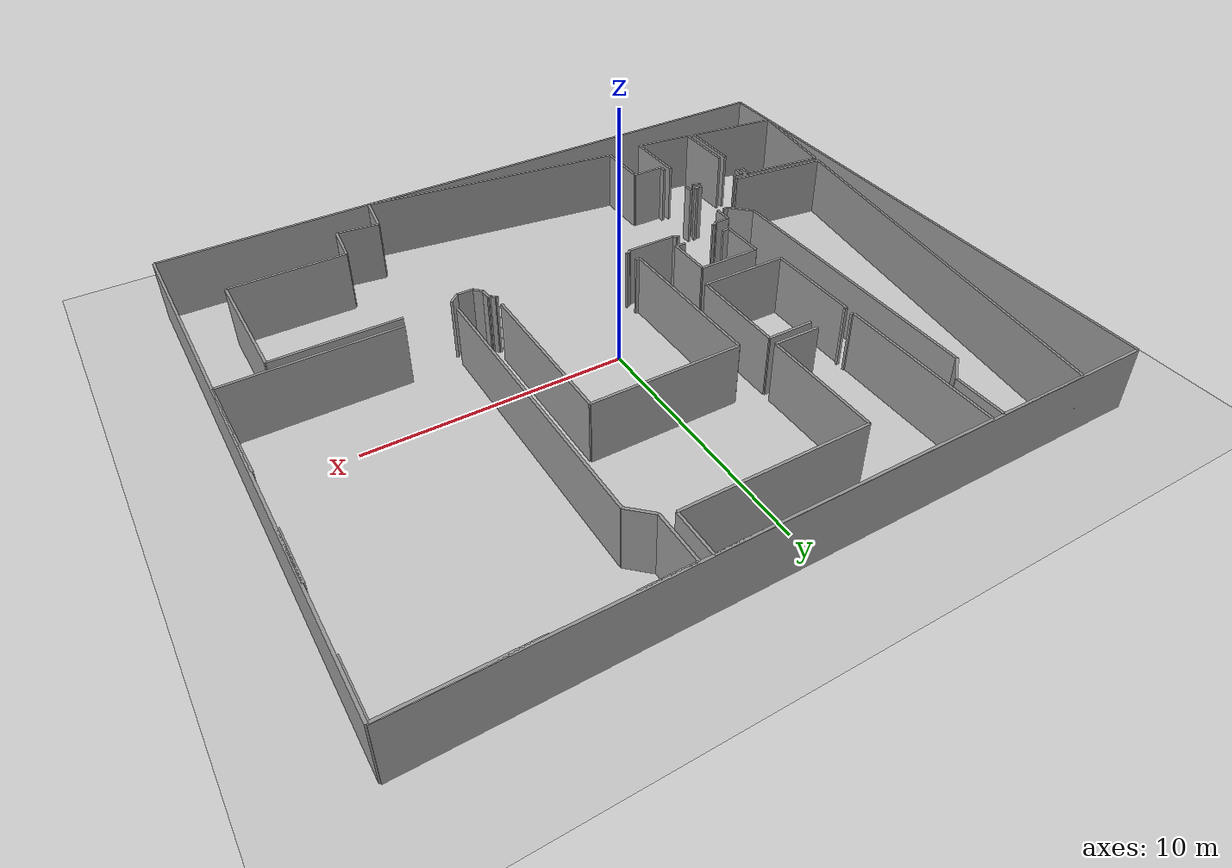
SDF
<sdf version="1.6">
 <world name="default">
  <model name="ground_plane">
   <static>1</static>
   <link name="link">
    <collision name="collision">
     <geometry><plane><normal>0 0 1</normal><size>100 100</size></plane></geometry>
     <surface><friction><ode><mu>100</mu><mu2>50</mu2></ode></friction></surface>
    </collision>
    <visual name="visual">
     <cast_shadows>0</cast_shadows>
     <geometry><plane><normal>0 0 1</normal><size>100 100</size></plane></geometry>
     <material>
      <script><uri>file://media/materials/scripts/gazebo.material</uri><name>Gazebo/Grey</name></script>
     </material>
    </visual>
   </link>
  </model>
  <model name="0510030937_A_40_1_106">
   <static>1</static>
   <link name="Wall_0">
    <collision name="Wall_0_Collision">
     <geometry><box><size>16.0548044985 0.1 2.5</size></box></geometry>
     <pose>8.02740224924 0 1.25 0 0 0</pose>
    </collision>
    <visual name="Wall_0_Visual">
     <pose>8.02740224924 0 1.25 0 0 0</pose>
     <geometry><box><size>16.0548044985 0.1 2.5</size></box></geometry>
     <material>
      <script><uri>file://media/materials/scripts/gazebo.material</uri><name>Gazebo/Grey</name></script>
      <ambient>1 1 1 1</ambient>
     </material>
    </visual>
    <pose>0.576091443086 -15.915288141 0 0 0 1.43886739205</pose>
   </link>
   <link name="Wall_1">
    <collision name="Wall_1_Collision">
     <geometry><box><size>3.60121947628 0.1 2.5</size></box></geometry>
     <pose>1.80060973814 0 1.25 0 0 0</pose>
    </collision>
    <visual name="Wall_1_Visual">
     <pose>1.80060973814 0 1.25 0 0 0</pose>
     <geometry><box><size>3.60121947628 0.1 2.5</size></box></geometry>
     <material>
      <script><uri>file://media/materials/scripts/gazebo.material</uri><name>Gazebo/Grey</name></script>
      <ambient>1 1 1 1</ambient>
     </material>
    </visual>
    <pose>2.68804572154 -0.0 0 0 0 -0.00268029687905</pose>
   </link>
   <link name="Wall_2">
    <collision name="Wall_2_Collision">
     <geometry><box><size>2.01679345738 0.1 2.5</size></box></geometry>
     <pose>1.00839672869 0 1.25 0 0 0</pose>
    </collision>
    <visual name="Wall_2_Visual">
     <pose>1.00839672869 0 1.25 0 0 0</pose>
     <geometry><box><size>2.01679345738 0.1 2.5</size></box></geometry>
     <material>
      <script><uri>file://media/materials/scripts/gazebo.material</uri><name>Gazebo/Grey</name></script>
      <ambient>1 1 1 1</ambient>
     </material>
    </visual>
    <pose>6.28925226226 -0.009652325766 0 0 0 -1.56122422795</pose>
   </link>
   <link name="Wall_3">
    <collision name="Wall_3_Collision">
     <geometry><box><size>1.08655380298 0.1 2.5</size></box></geometry>
     <pose>0.543276901489 0 1.25 0 0 0</pose>
    </collision>
    <visual name="Wall_3_Visual">
     <pose>0.543276901489 0 1.25 0 0 0</pose>
     <geometry><box><size>1.08655380298 0.1 2.5</size></box></geometry>
     <material>
      <script><uri>file://media/materials/scripts/gazebo.material</uri><name>Gazebo/Grey</name></script>
      <ambient>1 1 1 1</ambient>
     </material>
    </visual>
    <pose>6.3085569138 -2.02635338943 0 0 0 -2.36875788933</pose>
   </link>
   <link name="Wall_4">
    <collision name="Wall_4_Collision">
     <geometry><box><size>11.1441196453 0.1 2.5</size></box></geometry>
     <pose>5.57205982267 0 1.25 0 0 0</pose>
    </collision>
    <visual name="Wall_4_Visual">
     <pose>5.57205982267 0 1.25 0 0 0</pose>
     <geometry><box><size>11.1441196453 0.1 2.5</size></box></geometry>
     <material>
      <script><uri>file://media/materials/scripts/gazebo.material</uri><name>Gazebo/Grey</name></script>
      <ambient>1 1 1 1</ambient>
     </material>
    </visual>
    <pose>5.53065565963 -2.78494999206 0 0 0 -1.57027208642</pose>
   </link>
   <link name="Wall_5">
    <collision name="Wall_5_Collision">
     <geometry><box><size>1.06870298314 0.1 2.5</size></box></geometry>
     <pose>0.53435149157 0 1.25 0 0 0</pose>
    </collision>
    <visual name="Wall_5_Visual">
     <pose>0.53435149157 0 1.25 0 0 0</pose>
     <geometry><box><size>1.06870298314 0.1 2.5</size></box></geometry>
     <material>
      <script><uri>file://media/materials/scripts/gazebo.material</uri><name>Gazebo/Grey</name></script>
      <ambient>1 1 1 1</ambient>
     </material>
    </visual>
    <pose>5.5364978568 -13.929068106 0 0 0 -0.779852001777</pose>
   </link>
   <link name="Wall_6">
    <collision name="Wall_6_Collision">
     <geometry><box><size>0.200412763931 0.1 2.5</size></box></geometry>
     <pose>0.100206381965 0 1.25 0 0 0</pose>
    </collision>
    <visual name="Wall_6_Visual">
     <pose>0.100206381965 0 1.25 0 0 0</pose>
     <geometry><box><size>0.200412763931 0.1 2.5</size></box></geometry>
     <material>
      <script><uri>file://media/materials/scripts/gazebo.material</uri><name>Gazebo/Grey</name></script>
      <ambient>1 1 1 1</ambient>
     </material>
    </visual>
    <pose>6.2963645023 -14.6805524686 0 0 0 0.0</pose>
   </link>
   <link name="Wall_7">
    <collision name="Wall_7_Collision">
     <geometry><box><size>0.133608509287 0.1 2.5</size></box></geometry>
     <pose>0.0668042546436 0 1.25 0 0 0</pose>
    </collision>
    <visual name="Wall_7_Visual">
     <pose>0.0668042546436 0 1.25 0 0 0</pose>
     <geometry><box><size>0.133608509287 0.1 2.5</size></box></geometry>
     <material>
      <script><uri>file://media/materials/scripts/gazebo.material</uri><name>Gazebo/Grey</name></script>
      <ambient>1 1 1 1</ambient>
     </material>
    </visual>
    <pose>6.49677726623 -16.5428163201 0 0 0 -1.57079632679</pose>
   </link>
   <link name="Wall_8">
    <collision name="Wall_8_Collision">
     <geometry><box><size>0.278623264386 0.1 2.5</size></box></geometry>
     <pose>0.139311632193 0 1.25 0 0 0</pose>
    </collision>
    <visual name="Wall_8_Visual">
     <pose>0.139311632193 0 1.25 0 0 0</pose>
     <geometry><box><size>0.278623264386 0.1 2.5</size></box></geometry>
     <material>
      <script><uri>file://media/materials/scripts/gazebo.material</uri><name>Gazebo/Grey</name></script>
      <ambient>1 1 1 1</ambient>
     </material>
    </visual>
    <pose>6.49677726623 -16.6764248293 0 0 0 2.99105734041</pose>
   </link>
   <link name="Wall_9">
    <collision name="Wall_9_Collision">
     <geometry><box><size>4.02360225789 0.1 2.5</size></box></geometry>
     <pose>2.01180112894 0 1.25 0 0 0</pose>
    </collision>
    <visual name="Wall_9_Visual">
     <pose>2.01180112894 0 1.25 0 0 0</pose>
     <geometry><box><size>4.02360225789 0.1 2.5</size></box></geometry>
     <material>
      <script><uri>file://media/materials/scripts/gazebo.material</uri><name>Gazebo/Grey</name></script>
      <ambient>1 1 1 1</ambient>
     </material>
    </visual>
    <pose>4.56821717733 -16.4175900937 0 0 0 3.01642722617</pose>
   </link>
   <link name="Wall_10">
    <collision name="Wall_10_Collision">
     <geometry><box><size>2.40224087489 0.1 2.5</size></box></geometry>
     <pose>1.20112043744 0 1.25 0 0 0</pose>
    </collision>
    <visual name="Wall_10_Visual">
     <pose>1.20112043744 0 1.25 0 0 0</pose>
     <geometry><box><size>2.40224087489 0.1 2.5</size></box></geometry>
     <material>
      <script><uri>file://media/materials/scripts/gazebo.material</uri><name>Gazebo/Grey</name></script>
      <ambient>1 1 1 1</ambient>
     </material>
    </visual>
    <pose>6.48839498333 -21.0942689316 0 0 0 3.00716500988</pose>
   </link>
   <link name="Wall_11">
    <collision name="Wall_11_Collision">
     <geometry><box><size>2.4815448769 0.1 2.5</size></box></geometry>
     <pose>1.24077243845 0 1.25 0 0 0</pose>
    </collision>
    <visual name="Wall_11_Visual">
     <pose>1.24077243845 0 1.25 0 0 0</pose>
     <geometry><box><size>2.4815448769 0.1 2.5</size></box></geometry>
     <material>
      <script><uri>file://media/materials/scripts/gazebo.material</uri><name>Gazebo/Grey</name></script>
      <ambient>1 1 1 1</ambient>
     </material>
    </visual>
    <pose>4.10782663915 -20.7723130656 0 0 0 1.56823734779</pose>
   </link>
   <link name="Wall_12">
    <collision name="Wall_12_Collision">
     <geometry><box><size>0.429809601556 0.1 2.5</size></box></geometry>
     <pose>0.214904800778 0 1.25 0 0 0</pose>
    </collision>
    <visual name="Wall_12_Visual">
     <pose>0.214904800778 0 1.25 0 0 0</pose>
     <geometry><box><size>0.429809601556 0.1 2.5</size></box></geometry>
     <material>
      <script><uri>file://media/materials/scripts/gazebo.material</uri><name>Gazebo/Grey</name></script>
      <ambient>1 1 1 1</ambient>
     </material>
    </visual>
    <pose>4.10236545483 -17.0861406572 0 0 0 1.55956748433</pose>
   </link>
   <link name="Wall_13">
    <collision name="Wall_13_Collision">
     <geometry><box><size>0.393914190122 0.1 2.5</size></box></geometry>
     <pose>0.196957095061 0 1.25 0 0 0</pose>
    </collision>
    <visual name="Wall_13_Visual">
     <pose>0.196957095061 0 1.25 0 0 0</pose>
     <geometry><box><size>0.393914190122 0.1 2.5</size></box></geometry>
     <material>
      <script><uri>file://media/materials/scripts/gazebo.material</uri><name>Gazebo/Grey</name></script>
      <ambient>1 1 1 1</ambient>
     </material>
    </visual>
    <pose>4.10719161772 -16.6563581521 0 0 0 -0.10951786398</pose>
   </link>
   <link name="Wall_14">
    <collision name="Wall_14_Collision">
     <geometry><box><size>0.358108511703 0.1 2.5</size></box></geometry>
     <pose>0.179054255851 0 1.25 0 0 0</pose>
    </collision>
    <visual name="Wall_14_Visual">
     <pose>0.179054255851 0 1.25 0 0 0</pose>
     <geometry><box><size>0.358108511703 0.1 2.5</size></box></geometry>
     <material>
      <script><uri>file://media/materials/scripts/gazebo.material</uri><name>Gazebo/Grey</name></script>
      <ambient>1 1 1 1</ambient>
     </material>
    </visual>
    <pose>6.12211462137 -16.8952532148 0 0 0 -0.159201572436</pose>
   </link>
   <link name="Wall_15">
    <collision name="Wall_15_Collision">
     <geometry><box><size>2.51065285695 0.1 2.5</size></box></geometry>
     <pose>1.25532642848 0 1.25 0 0 0</pose>
    </collision>
    <visual name="Wall_15_Visual">
     <pose>1.25532642848 0 1.25 0 0 0</pose>
     <geometry><box><size>2.51065285695 0.1 2.5</size></box></geometry>
     <material>
      <script><uri>file://media/materials/scripts/gazebo.material</uri><name>Gazebo/Grey</name></script>
      <ambient>1 1 1 1</ambient>
     </material>
    </visual>
    <pose>6.47569455469 -18.5836481981 0 0 0 -1.56573768925</pose>
   </link>
   <link name="Wall_16">
    <collision name="Wall_16_Collision">
     <geometry><box><size>3.84897449724 0.1 2.5</size></box></geometry>
     <pose>1.92448724862 0 1.25 0 0 0</pose>
    </collision>
    <visual name="Wall_16_Visual">
     <pose>1.92448724862 0 1.25 0 0 0</pose>
     <geometry><box><size>3.84897449724 0.1 2.5</size></box></geometry>
     <material>
      <script><uri>file://media/materials/scripts/gazebo.material</uri><name>Gazebo/Grey</name></script>
      <ambient>1 1 1 1</ambient>
     </material>
    </visual>
    <pose>3.81622479759 -20.7098269567 0 0 0 3.01104936089</pose>
   </link>
   <link name="Wall_17">
    <collision name="Wall_17_Collision">
     <geometry><box><size>4.09456205937 0.1 2.5</size></box></geometry>
     <pose>2.04728102968 0 1.25 0 0 0</pose>
    </collision>
    <visual name="Wall_17_Visual">
     <pose>2.04728102968 0 1.25 0 0 0</pose>
     <geometry><box><size>4.09456205937 0.1 2.5</size></box></geometry>
     <material>
      <script><uri>file://media/materials/scripts/gazebo.material</uri><name>Gazebo/Grey</name></script>
      <ambient>1 1 1 1</ambient>
     </material>
    </visual>
    <pose>0.0 -20.2087950468 0 0 0 1.43783485177</pose>
   </link>
   <link name="Wall_18">
    <collision name="Wall_18_Collision">
     <geometry><box><size>3.33519864969 0.1 2.5</size></box></geometry>
     <pose>1.66759932485 0 1.25 0 0 0</pose>
    </collision>
    <visual name="Wall_18_Visual">
     <pose>1.66759932485 0 1.25 0 0 0</pose>
     <geometry><box><size>3.33519864969 0.1 2.5</size></box></geometry>
     <material>
      <script><uri>file://media/materials/scripts/gazebo.material</uri><name>Gazebo/Grey</name></script>
      <ambient>1 1 1 1</ambient>
     </material>
    </visual>
    <pose>0.542816320051 -16.1503730751 0 0 0 -0.1305660948</pose>
   </link>
   <link name="Wall_19">
    <collision name="Wall_19_Collision">
     <geometry><box><size>0.484339883918 0.1 2.5</size></box></geometry>
     <pose>0.242169941959 0 1.25 0 0 0</pose>
    </collision>
    <visual name="Wall_19_Visual">
     <pose>0.242169941959 0 1.25 0 0 0</pose>
     <geometry><box><size>0.484339883918 0.1 2.5</size></box></geometry>
     <material>
      <script><uri>file://media/materials/scripts/gazebo.material</uri><name>Gazebo/Grey</name></script>
      <ambient>1 1 1 1</ambient>
     </material>
    </visual>
    <pose>3.84962692491 -16.5846007303 0 0 0 -1.58810380379</pose>
   </link>
   <link name="Wall_20">
    <collision name="Wall_20_Collision">
     <geometry><box><size>2.43576775469 0.1 2.5</size></box></geometry>
     <pose>1.21788387735 0 1.25 0 0 0</pose>
    </collision>
    <visual name="Wall_20_Visual">
     <pose>1.21788387735 0 1.25 0 0 0</pose>
     <geometry><box><size>2.43576775469 0.1 2.5</size></box></geometry>
     <material>
      <script><uri>file://media/materials/scripts/gazebo.material</uri><name>Gazebo/Grey</name></script>
      <ambient>1 1 1 1</ambient>
     </material>
    </visual>
    <pose>3.83591046198 -18.2741387522 0 0 0 -1.57887832832</pose>
   </link>
   <link name="Wall_21">
    <collision name="Wall_21_Collision">
     <geometry><box><size>2.09353865693 0.1 2.5</size></box></geometry>
     <pose>1.04676932846 0 1.25 0 0 0</pose>
    </collision>
    <visual name="Wall_21_Visual">
     <pose>1.04676932846 0 1.25 0 0 0</pose>
     <geometry><box><size>2.09353865693 0.1 2.5</size></box></geometry>
     <material>
      <script><uri>file://media/materials/scripts/gazebo.material</uri><name>Gazebo/Grey</name></script>
      <ambient>1 1 1 1</ambient>
     </material>
    </visual>
    <pose>8.06591522464 -21.0025718368 0 0 0 1.57079632679</pose>
   </link>
   <link name="Wall_22">
    <collision name="Wall_22_Collision">
     <geometry><box><size>1.29645975552 0.1 2.5</size></box></geometry>
     <pose>0.648229877758 0 1.25 0 0 0</pose>
    </collision>
    <visual name="Wall_22_Visual">
     <pose>0.648229877758 0 1.25 0 0 0</pose>
     <geometry><box><size>1.29645975552 0.1 2.5</size></box></geometry>
     <material>
      <script><uri>file://media/materials/scripts/gazebo.material</uri><name>Gazebo/Grey</name></script>
      <ambient>1 1 1 1</ambient>
     </material>
    </visual>
    <pose>8.06591522464 -18.9090331799 0 0 0 3.14159265359</pose>
   </link>
   <link name="Wall_23">
    <collision name="Wall_23_Collision">
     <geometry><box><size>0.288172725829 0.1 2.5</size></box></geometry>
     <pose>0.144086362915 0 1.25 0 0 0</pose>
    </collision>
    <visual name="Wall_23_Visual">
     <pose>0.144086362915 0 1.25 0 0 0</pose>
     <geometry><box><size>0.288172725829 0.1 2.5</size></box></geometry>
     <material>
      <script><uri>file://media/materials/scripts/gazebo.material</uri><name>Gazebo/Grey</name></script>
      <ambient>1 1 1 1</ambient>
     </material>
    </visual>
    <pose>6.76945546912 -18.9090331799 0 0 0 1.57079632679</pose>
   </link>
   <link name="Wall_24">
    <collision name="Wall_24_Collision">
     <geometry><box><size>0.385204000635 0.1 2.5</size></box></geometry>
     <pose>0.192602000318 0 1.25 0 0 0</pose>
    </collision>
    <visual name="Wall_24_Visual">
     <pose>0.192602000318 0 1.25 0 0 0</pose>
     <geometry><box><size>0.385204000635 0.1 2.5</size></box></geometry>
     <material>
      <script><uri>file://media/materials/scripts/gazebo.material</uri><name>Gazebo/Grey</name></script>
      <ambient>1 1 1 1</ambient>
     </material>
    </visual>
    <pose>6.76945546912 -16.9710747738 0 0 0 1.57079632679</pose>
   </link>
   <link name="Wall_25">
    <collision name="Wall_25_Collision">
     <geometry><box><size>0.719860295285 0.1 2.5</size></box></geometry>
     <pose>0.359930147642 0 1.25 0 0 0</pose>
    </collision>
    <visual name="Wall_25_Visual">
     <pose>0.359930147642 0 1.25 0 0 0</pose>
     <geometry><box><size>0.719860295285 0.1 2.5</size></box></geometry>
     <material>
      <script><uri>file://media/materials/scripts/gazebo.material</uri><name>Gazebo/Grey</name></script>
      <ambient>1 1 1 1</ambient>
     </material>
    </visual>
    <pose>6.76945546912 -14.7105254802 0 0 0 1.57079632679</pose>
   </link>
   <link name="Wall_26">
    <collision name="Wall_26_Collision">
     <geometry><box><size>0.590315923162 0.1 2.5</size></box></geometry>
     <pose>0.295157961581 0 1.25 0 0 0</pose>
    </collision>
    <visual name="Wall_26_Visual">
     <pose>0.295157961581 0 1.25 0 0 0</pose>
     <geometry><box><size>0.590315923162 0.1 2.5</size></box></geometry>
     <material>
      <script><uri>file://media/materials/scripts/gazebo.material</uri><name>Gazebo/Grey</name></script>
      <ambient>1 1 1 1</ambient>
     </material>
    </visual>
    <pose>6.76945546912 -13.9906651849 0 0 0 0.0</pose>
   </link>
   <link name="Wall_27">
    <collision name="Wall_27_Collision">
     <geometry><box><size>0.197297551502 0.1 2.5</size></box></geometry>
     <pose>0.0986487757508 0 1.25 0 0 0</pose>
    </collision>
    <visual name="Wall_27_Visual">
     <pose>0.0986487757508 0 1.25 0 0 0</pose>
     <geometry><box><size>0.197297551502 0.1 2.5</size></box></geometry>
     <material>
      <script><uri>file://media/materials/scripts/gazebo.material</uri><name>Gazebo/Grey</name></script>
      <ambient>1 1 1 1</ambient>
     </material>
    </visual>
    <pose>7.35977139228 -13.9906651849 0 0 0 0.695150375407</pose>
   </link>
   <link name="Wall_28">
    <collision name="Wall_28_Collision">
     <geometry><box><size>0.0949577679799 0.1 2.5</size></box></geometry>
     <pose>0.04747888399 0 1.25 0 0 0</pose>
    </collision>
    <visual name="Wall_28_Visual">
     <pose>0.04747888399 0 1.25 0 0 0</pose>
     <geometry><box><size>0.0949577679799 0.1 2.5</size></box></geometry>
     <material>
      <script><uri>file://media/materials/scripts/gazebo.material</uri><name>Gazebo/Grey</name></script>
      <ambient>1 1 1 1</ambient>
     </material>
    </visual>
    <pose>7.51128750595 -13.86429592 0 0 0 -0.0669240356469</pose>
   </link>
   <link name="Wall_29">
    <collision name="Wall_29_Collision">
     <geometry><box><size>0.115319892046 0.1 2.5</size></box></geometry>
     <pose>0.0576599460232 0 1.25 0 0 0</pose>
    </collision>
    <visual name="Wall_29_Visual">
     <pose>0.0576599460232 0 1.25 0 0 0</pose>
     <geometry><box><size>0.115319892046 0.1 2.5</size></box></geometry>
     <material>
      <script><uri>file://media/materials/scripts/gazebo.material</uri><name>Gazebo/Grey</name></script>
      <ambient>1 1 1 1</ambient>
     </material>
    </visual>
    <pose>9.172503572 -13.8706461343 0 0 0 0.0</pose>
   </link>
   <link name="Wall_30">
    <collision name="Wall_30_Collision">
     <geometry><box><size>0.168314464014 0.1 2.5</size></box></geometry>
     <pose>0.0841572320072 0 1.25 0 0 0</pose>
    </collision>
    <visual name="Wall_30_Visual">
     <pose>0.0841572320072 0 1.25 0 0 0</pose>
     <geometry><box><size>0.168314464014 0.1 2.5</size></box></geometry>
     <material>
      <script><uri>file://media/materials/scripts/gazebo.material</uri><name>Gazebo/Grey</name></script>
      <ambient>1 1 1 1</ambient>
     </material>
    </visual>
    <pose>9.28782346404 -13.8706461343 0 0 0 -0.770457973065</pose>
   </link>
   <link name="Wall_31">
    <collision name="Wall_31_Collision">
     <geometry><box><size>1.96551833624 0.1 2.5</size></box></geometry>
     <pose>0.982759168122 0 1.25 0 0 0</pose>
    </collision>
    <visual name="Wall_31_Visual">
     <pose>0.982759168122 0 1.25 0 0 0</pose>
     <geometry><box><size>1.96551833624 0.1 2.5</size></box></geometry>
     <material>
      <script><uri>file://media/materials/scripts/gazebo.material</uri><name>Gazebo/Grey</name></script>
      <ambient>1 1 1 1</ambient>
     </material>
    </visual>
    <pose>9.4086045404 -13.9878710906 0 0 0 0.0</pose>
   </link>
   <link name="Wall_32">
    <collision name="Wall_32_Collision">
     <geometry><box><size>0.189507291566 0.1 2.5</size></box></geometry>
     <pose>0.0947536457828 0 1.25 0 0 0</pose>
    </collision>
    <visual name="Wall_32_Visual">
     <pose>0.0947536457828 0 1.25 0 0 0</pose>
     <geometry><box><size>0.189507291566 0.1 2.5</size></box></geometry>
     <material>
      <script><uri>file://media/materials/scripts/gazebo.material</uri><name>Gazebo/Grey</name></script>
      <ambient>1 1 1 1</ambient>
     </material>
    </visual>
    <pose>11.3741228766 -13.9878710906 0 0 0 0.751745628718</pose>
   </link>
   <link name="Wall_33">
    <collision name="Wall_33_Collision">
     <geometry><box><size>0.0763295761232 0.1 2.5</size></box></geometry>
     <pose>0.0381647880616 0 1.25 0 0 0</pose>
    </collision>
    <visual name="Wall_33_Visual">
     <pose>0.0381647880616 0 1.25 0 0 0</pose>
     <geometry><box><size>0.0763295761232 0.1 2.5</size></box></geometry>
     <material>
      <script><uri>file://media/materials/scripts/gazebo.material</uri><name>Gazebo/Grey</name></script>
      <ambient>1 1 1 1</ambient>
     </material>
    </visual>
    <pose>11.5125575488 -13.8584537228 0 0 0 0.0</pose>
   </link>
   <link name="Wall_34">
    <collision name="Wall_34_Collision">
     <geometry><box><size>0.0872519447531 0.1 2.5</size></box></geometry>
     <pose>0.0436259723766 0 1.25 0 0 0</pose>
    </collision>
    <visual name="Wall_34_Visual">
     <pose>0.0436259723766 0 1.25 0 0 0</pose>
     <geometry><box><size>0.0872519447531 0.1 2.5</size></box></geometry>
     <material>
      <script><uri>file://media/materials/scripts/gazebo.material</uri><name>Gazebo/Grey</name></script>
      <ambient>1 1 1 1</ambient>
     </material>
    </visual>
    <pose>16.9852992538 -13.8584537228 0 0 0 0.0</pose>
   </link>
   <link name="Wall_35">
    <collision name="Wall_35_Collision">
     <geometry><box><size>0.192117020998 0.1 2.5</size></box></geometry>
     <pose>0.0960585104989 0 1.25 0 0 0</pose>
    </collision>
    <visual name="Wall_35_Visual">
     <pose>0.0960585104989 0 1.25 0 0 0</pose>
     <geometry><box><size>0.192117020998 0.1 2.5</size></box></geometry>
     <material>
      <script><uri>file://media/materials/scripts/gazebo.material</uri><name>Gazebo/Grey</name></script>
      <ambient>1 1 1 1</ambient>
     </material>
    </visual>
    <pose>17.0725511986 -13.8584537228 0 0 0 -0.769971617256</pose>
   </link>
   <link name="Wall_36">
    <collision name="Wall_36_Collision">
     <geometry><box><size>0.0798856961423 0.1 2.5</size></box></geometry>
     <pose>0.0399428480711 0 1.25 0 0 0</pose>
    </collision>
    <visual name="Wall_36_Visual">
     <pose>0.0399428480711 0 1.25 0 0 0</pose>
     <geometry><box><size>0.0798856961423 0.1 2.5</size></box></geometry>
     <material>
      <script><uri>file://media/materials/scripts/gazebo.material</uri><name>Gazebo/Grey</name></script>
      <ambient>1 1 1 1</ambient>
     </material>
    </visual>
    <pose>17.2104778536 -13.9921892364 0 0 0 0.0</pose>
   </link>
   <link name="Wall_37">
    <collision name="Wall_37_Collision">
     <geometry><box><size>0.421168350762 0.1 2.5</size></box></geometry>
     <pose>0.210584175381 0 1.25 0 0 0</pose>
    </collision>
    <visual name="Wall_37_Visual">
     <pose>0.210584175381 0 1.25 0 0 0</pose>
     <geometry><box><size>0.421168350762 0.1 2.5</size></box></geometry>
     <material>
      <script><uri>file://media/materials/scripts/gazebo.material</uri><name>Gazebo/Grey</name></script>
      <ambient>1 1 1 1</ambient>
     </material>
    </visual>
    <pose>17.2903635498 -13.9921892364 0 0 0 -1.58104928476</pose>
   </link>
   <link name="Wall_38">
    <collision name="Wall_38_Collision">
     <geometry><box><size>0.407492396899 0.1 2.5</size></box></geometry>
     <pose>0.203746198449 0 1.25 0 0 0</pose>
    </collision>
    <visual name="Wall_38_Visual">
     <pose>0.203746198449 0 1.25 0 0 0</pose>
     <geometry><box><size>0.407492396899 0.1 2.5</size></box></geometry>
     <material>
      <script><uri>file://media/materials/scripts/gazebo.material</uri><name>Gazebo/Grey</name></script>
      <ambient>1 1 1 1</ambient>
     </material>
    </visual>
    <pose>17.286045404 -14.4133354501 0 0 0 -0.80016455754</pose>
   </link>
   <link name="Wall_39">
    <collision name="Wall_39_Collision">
     <geometry><box><size>0.626258136212 0.1 2.5</size></box></geometry>
     <pose>0.313129068106 0 1.25 0 0 0</pose>
    </collision>
    <visual name="Wall_39_Visual">
     <pose>0.313129068106 0 1.25 0 0 0</pose>
     <geometry><box><size>0.626258136212 0.1 2.5</size></box></geometry>
     <material>
      <script><uri>file://media/materials/scripts/gazebo.material</uri><name>Gazebo/Grey</name></script>
      <ambient>1 1 1 1</ambient>
     </material>
    </visual>
    <pose>17.5698999841 -14.7056993174 0 0 0 0.0</pose>
   </link>
   <link name="Wall_40">
    <collision name="Wall_40_Collision">
     <geometry><box><size>0.478299373484 0.1 2.5</size></box></geometry>
     <pose>0.239149686742 0 1.25 0 0 0</pose>
    </collision>
    <visual name="Wall_40_Visual">
     <pose>0.239149686742 0 1.25 0 0 0</pose>
     <geometry><box><size>0.478299373484 0.1 2.5</size></box></geometry>
     <material>
      <script><uri>file://media/materials/scripts/gazebo.material</uri><name>Gazebo/Grey</name></script>
      <ambient>1 1 1 1</ambient>
     </material>
    </visual>
    <pose>18.1961581203 -14.7056993174 0 0 0 0.752158485114</pose>
   </link>
   <link name="Wall_41">
    <collision name="Wall_41_Collision">
     <geometry><box><size>4.82667090014 0.1 2.5</size></box></geometry>
     <pose>2.41333545007 0 1.25 0 0 0</pose>
    </collision>
    <visual name="Wall_41_Visual">
     <pose>2.41333545007 0 1.25 0 0 0</pose>
     <geometry><box><size>4.82667090014 0.1 2.5</size></box></geometry>
     <material>
      <script><uri>file://media/materials/scripts/gazebo.material</uri><name>Gazebo/Grey</name></script>
      <ambient>1 1 1 1</ambient>
     </material>
    </visual>
    <pose>20.3758056834 -14.3789172885 0 0 0 0.0</pose>
   </link>
   <link name="Wall_42">
    <collision name="Wall_42_Collision">
     <geometry><box><size>4.9446578822 0.1 2.5</size></box></geometry>
     <pose>2.4723289411 0 1.25 0 0 0</pose>
    </collision>
    <visual name="Wall_42_Visual">
     <pose>2.4723289411 0 1.25 0 0 0</pose>
     <geometry><box><size>4.9446578822 0.1 2.5</size></box></geometry>
     <material>
      <script><uri>file://media/materials/scripts/gazebo.material</uri><name>Gazebo/Grey</name></script>
      <ambient>1 1 1 1</ambient>
     </material>
    </visual>
    <pose>25.2024765836 -14.3789172885 0 0 0 -1.57079632679</pose>
   </link>
   <link name="Wall_43">
    <collision name="Wall_43_Collision">
     <geometry><box><size>4.53443403715 0.1 2.5</size></box></geometry>
     <pose>2.26721701857 0 1.25 0 0 0</pose>
    </collision>
    <visual name="Wall_43_Visual">
     <pose>2.26721701857 0 1.25 0 0 0</pose>
     <geometry><box><size>4.53443403715 0.1 2.5</size></box></geometry>
     <material>
      <script><uri>file://media/materials/scripts/gazebo.material</uri><name>Gazebo/Grey</name></script>
      <ambient>1 1 1 1</ambient>
     </material>
    </visual>
    <pose>25.2024765836 -19.3235751707 0 0 0 3.14159265359</pose>
   </link>
   <link name="Wall_44">
    <collision name="Wall_44_Collision">
     <geometry><box><size>1.62953328133 0.1 2.5</size></box></geometry>
     <pose>0.814766640663 0 1.25 0 0 0</pose>
    </collision>
    <visual name="Wall_44_Visual">
     <pose>0.814766640663 0 1.25 0 0 0</pose>
     <geometry><box><size>1.62953328133 0.1 2.5</size></box></geometry>
     <material>
      <script><uri>file://media/materials/scripts/gazebo.material</uri><name>Gazebo/Grey</name></script>
      <ambient>1 1 1 1</ambient>
     </material>
    </visual>
    <pose>20.6680425464 -19.3235751707 0 0 0 -1.67863907849</pose>
   </link>
   <link name="Wall_45">
    <collision name="Wall_45_Collision">
     <geometry><box><size>1.649968526 0.1 2.5</size></box></geometry>
     <pose>0.824984262999 0 1.25 0 0 0</pose>
    </collision>
    <visual name="Wall_45_Visual">
     <pose>0.824984262999 0 1.25 0 0 0</pose>
     <geometry><box><size>1.649968526 0.1 2.5</size></box></geometry>
     <material>
      <script><uri>file://media/materials/scripts/gazebo.material</uri><name>Gazebo/Grey</name></script>
      <ambient>1 1 1 1</ambient>
     </material>
    </visual>
    <pose>20.4926496269 -20.9436418479 0 0 0 3.01470758997</pose>
   </link>
   <link name="Wall_46">
    <collision name="Wall_46_Collision">
     <geometry><box><size>1.6736220848 0.1 2.5</size></box></geometry>
     <pose>0.836811042402 0 1.25 0 0 0</pose>
    </collision>
    <visual name="Wall_46_Visual">
     <pose>0.836811042402 0 1.25 0 0 0</pose>
     <geometry><box><size>1.6736220848 0.1 2.5</size></box></geometry>
     <material>
      <script><uri>file://media/materials/scripts/gazebo.material</uri><name>Gazebo/Grey</name></script>
      <ambient>1 1 1 1</ambient>
     </material>
    </visual>
    <pose>18.8559453882 -20.7348468011 0 0 0 -1.70108122171</pose>
   </link>
   <link name="Wall_47">
    <collision name="Wall_47_Collision">
     <geometry><box><size>10.6638037731 0.1 2.5</size></box></geometry>
     <pose>5.33190188654 0 1.25 0 0 0</pose>
    </collision>
    <visual name="Wall_47_Visual">
     <pose>5.33190188654 0 1.25 0 0 0</pose>
     <geometry><box><size>10.6638037731 0.1 2.5</size></box></geometry>
     <material>
      <script><uri>file://media/materials/scripts/gazebo.material</uri><name>Gazebo/Grey</name></script>
      <ambient>1 1 1 1</ambient>
     </material>
    </visual>
    <pose>18.6385140498 -22.3942848071 0 0 0 3.01071118898</pose>
   </link>
   <link name="Wall_48">
    <collision name="Wall_48_Collision">
     <geometry><box><size>1.77666296237 0.1 2.5</size></box></geometry>
     <pose>0.888331481187 0 1.25 0 0 0</pose>
    </collision>
    <visual name="Wall_48_Visual">
     <pose>0.888331481187 0 1.25 0 0 0</pose>
     <geometry><box><size>1.77666296237 0.1 2.5</size></box></geometry>
     <material>
      <script><uri>file://media/materials/scripts/gazebo.material</uri><name>Gazebo/Grey</name></script>
      <ambient>1 1 1 1</ambient>
     </material>
    </visual>
    <pose>9.66972535323 -13.358310843 0 0 0 1.57079632679</pose>
   </link>
   <link name="Wall_49">
    <collision name="Wall_49_Collision">
     <geometry><box><size>2.46807429751 0.1 2.5</size></box></geometry>
     <pose>1.23403714875 0 1.25 0 0 0</pose>
    </collision>
    <visual name="Wall_49_Visual">
     <pose>1.23403714875 0 1.25 0 0 0</pose>
     <geometry><box><size>2.46807429751 0.1 2.5</size></box></geometry>
     <material>
      <script><uri>file://media/materials/scripts/gazebo.material</uri><name>Gazebo/Grey</name></script>
      <ambient>1 1 1 1</ambient>
     </material>
    </visual>
    <pose>9.66972535323 -11.5816478806 0 0 0 3.14159265359</pose>
   </link>
   <link name="Wall_50">
    <collision name="Wall_50_Collision">
     <geometry><box><size>1.74783298936 0.1 2.5</size></box></geometry>
     <pose>0.873916494682 0 1.25 0 0 0</pose>
    </collision>
    <visual name="Wall_50_Visual">
     <pose>0.873916494682 0 1.25 0 0 0</pose>
     <geometry><box><size>1.74783298936 0.1 2.5</size></box></geometry>
     <material>
      <script><uri>file://media/materials/scripts/gazebo.material</uri><name>Gazebo/Grey</name></script>
      <ambient>1 1 1 1</ambient>
     </material>
    </visual>
    <pose>7.20165105572 -11.5816478806 0 0 0 -1.57079632679</pose>
   </link>
   <link name="Wall_51">
    <collision name="Wall_51_Collision">
     <geometry><box><size>0.297698047309 0.1 2.5</size></box></geometry>
     <pose>0.148849023655 0 1.25 0 0 0</pose>
    </collision>
    <visual name="Wall_51_Visual">
     <pose>0.148849023655 0 1.25 0 0 0</pose>
     <geometry><box><size>0.297698047309 0.1 2.5</size></box></geometry>
     <material>
      <script><uri>file://media/materials/scripts/gazebo.material</uri><name>Gazebo/Grey</name></script>
      <ambient>1 1 1 1</ambient>
     </material>
    </visual>
    <pose>7.20165105572 -13.32948087 0 0 0 0.0</pose>
   </link>
   <link name="Wall_52">
    <collision name="Wall_52_Collision">
     <geometry><box><size>0.397807451529 0.1 2.5</size></box></geometry>
     <pose>0.198903725764 0 1.25 0 0 0</pose>
    </collision>
    <visual name="Wall_52_Visual">
     <pose>0.198903725764 0 1.25 0 0 0</pose>
     <geometry><box><size>0.397807451529 0.1 2.5</size></box></geometry>
     <material>
      <script><uri>file://media/materials/scripts/gazebo.material</uri><name>Gazebo/Grey</name></script>
      <ambient>1 1 1 1</ambient>
     </material>
    </visual>
    <pose>9.27296396253 -13.32948087 0 0 0 -0.0725357697882</pose>
   </link>
   <link name="Wall_53">
    <collision name="Wall_53_Collision">
     <geometry><box><size>0.17577393237 0.1 2.5</size></box></geometry>
     <pose>0.0878869661851 0 1.25 0 0 0</pose>
    </collision>
    <visual name="Wall_53_Visual">
     <pose>0.0878869661851 0 1.25 0 0 0</pose>
     <geometry><box><size>0.17577393237 0.1 2.5</size></box></geometry>
     <material>
      <script><uri>file://media/materials/scripts/gazebo.material</uri><name>Gazebo/Grey</name></script>
      <ambient>1 1 1 1</ambient>
     </material>
    </visual>
    <pose>11.3193840292 -13.3454834101 0 0 0 0.0</pose>
   </link>
   <link name="Wall_54">
    <collision name="Wall_54_Collision">
     <geometry><box><size>6.27350373075 0.1 2.5</size></box></geometry>
     <pose>3.13675186538 0 1.25 0 0 0</pose>
    </collision>
    <visual name="Wall_54_Visual">
     <pose>3.13675186538 0 1.25 0 0 0</pose>
     <geometry><box><size>6.27350373075 0.1 2.5</size></box></geometry>
     <material>
      <script><uri>file://media/materials/scripts/gazebo.material</uri><name>Gazebo/Grey</name></script>
      <ambient>1 1 1 1</ambient>
     </material>
    </visual>
    <pose>17.0738212415 -13.3454834101 0 0 0 1.57079632679</pose>
   </link>
   <link name="Wall_55">
    <collision name="Wall_55_Collision">
     <geometry><box><size>5.7764089538 0.1 2.5</size></box></geometry>
     <pose>2.8882044769 0 1.25 0 0 0</pose>
    </collision>
    <visual name="Wall_55_Visual">
     <pose>2.8882044769 0 1.25 0 0 0</pose>
     <geometry><box><size>5.7764089538 0.1 2.5</size></box></geometry>
     <material>
      <script><uri>file://media/materials/scripts/gazebo.material</uri><name>Gazebo/Grey</name></script>
      <ambient>1 1 1 1</ambient>
     </material>
    </visual>
    <pose>17.0738212415 -7.07197967931 0 0 0 3.14159265359</pose>
   </link>
   <link name="Wall_56">
    <collision name="Wall_56_Collision">
     <geometry><box><size>6.27354220653 0.1 2.5</size></box></geometry>
     <pose>3.13677110327 0 1.25 0 0 0</pose>
    </collision>
    <visual name="Wall_56_Visual">
     <pose>3.13677110327 0 1.25 0 0 0</pose>
     <geometry><box><size>6.27354220653 0.1 2.5</size></box></geometry>
     <material>
      <script><uri>file://media/materials/scripts/gazebo.material</uri><name>Gazebo/Grey</name></script>
      <ambient>1 1 1 1</ambient>
     </material>
    </visual>
    <pose>11.2974122877 -7.07197967931 0 0 0 -1.56729403324</pose>
   </link>
   <link name="Wall_57">
    <collision name="Wall_57_Collision">
     <geometry><box><size>6.56739164947 0.1 2.5</size></box></geometry>
     <pose>3.28369582473 0 1.25 0 0 0</pose>
    </collision>
    <visual name="Wall_57_Visual">
     <pose>3.28369582473 0 1.25 0 0 0</pose>
     <geometry><box><size>6.56739164947 0.1 2.5</size></box></geometry>
     <material>
      <script><uri>file://media/materials/scripts/gazebo.material</uri><name>Gazebo/Grey</name></script>
      <ambient>1 1 1 1</ambient>
     </material>
    </visual>
    <pose>27.0643594221 -13.9167486903 0 0 0 3.14159265359</pose>
   </link>
   <link name="Wall_58">
    <collision name="Wall_58_Collision">
     <geometry><box><size>11.1518653755 0.1 2.5</size></box></geometry>
     <pose>5.57593268773 0 1.25 0 0 0</pose>
    </collision>
    <visual name="Wall_58_Visual">
     <pose>5.57593268773 0 1.25 0 0 0</pose>
     <geometry><box><size>11.1518653755 0.1 2.5</size></box></geometry>
     <material>
      <script><uri>file://media/materials/scripts/gazebo.material</uri><name>Gazebo/Grey</name></script>
      <ambient>1 1 1 1</ambient>
     </material>
    </visual>
    <pose>18.5217971107 -13.9167486903 0 0 0 1.57079632679</pose>
   </link>
   <link name="Wall_59">
    <collision name="Wall_59_Collision">
     <geometry><box><size>1.05576982709 0.1 2.5</size></box></geometry>
     <pose>0.527884913547 0 1.25 0 0 0</pose>
    </collision>
    <visual name="Wall_59_Visual">
     <pose>0.527884913547 0 1.25 0 0 0</pose>
     <geometry><box><size>1.05576982709 0.1 2.5</size></box></geometry>
     <material>
      <script><uri>file://media/materials/scripts/gazebo.material</uri><name>Gazebo/Grey</name></script>
      <ambient>1 1 1 1</ambient>
     </material>
    </visual>
    <pose>18.5217971107 -2.76488331481 0 0 0 2.37941842598</pose>
   </link>
   <link name="Wall_60">
    <collision name="Wall_60_Collision">
     <geometry><box><size>2.00996983648 0.1 2.5</size></box></geometry>
     <pose>1.00498491824 0 1.25 0 0 0</pose>
    </collision>
    <visual name="Wall_60_Visual">
     <pose>1.00498491824 0 1.25 0 0 0</pose>
     <geometry><box><size>2.00996983648 0.1 2.5</size></box></geometry>
     <material>
      <script><uri>file://media/materials/scripts/gazebo.material</uri><name>Gazebo/Grey</name></script>
      <ambient>1 1 1 1</ambient>
     </material>
    </visual>
    <pose>17.7581203366 -2.03587871091 0 0 0 1.57079632679</pose>
   </link>
   <link name="Wall_61">
    <collision name="Wall_61_Collision">
     <geometry><box><size>1.9547229719 0.1 2.5</size></box></geometry>
     <pose>0.97736148595 0 1.25 0 0 0</pose>
    </collision>
    <visual name="Wall_61_Visual">
     <pose>0.97736148595 0 1.25 0 0 0</pose>
     <geometry><box><size>1.9547229719 0.1 2.5</size></box></geometry>
     <material>
      <script><uri>file://media/materials/scripts/gazebo.material</uri><name>Gazebo/Grey</name></script>
      <ambient>1 1 1 1</ambient>
     </material>
    </visual>
    <pose>17.7581203366 -0.0259088744245 0 0 0 0.0</pose>
   </link>
   <link name="Wall_62">
    <collision name="Wall_62_Collision">
     <geometry><box><size>4.74183203683 0.1 2.5</size></box></geometry>
     <pose>2.37091601842 0 1.25 0 0 0</pose>
    </collision>
    <visual name="Wall_62_Visual">
     <pose>2.37091601842 0 1.25 0 0 0</pose>
     <geometry><box><size>4.74183203683 0.1 2.5</size></box></geometry>
     <material>
      <script><uri>file://media/materials/scripts/gazebo.material</uri><name>Gazebo/Grey</name></script>
      <ambient>1 1 1 1</ambient>
     </material>
    </visual>
    <pose>22.2717256707 -0.0259088744245 0 0 0 0.0</pose>
   </link>
   <link name="Wall_63">
    <collision name="Wall_63_Collision">
     <geometry><box><size>2.15691379584 0.1 2.5</size></box></geometry>
     <pose>1.07845689792 0 1.25 0 0 0</pose>
    </collision>
    <visual name="Wall_63_Visual">
     <pose>1.07845689792 0 1.25 0 0 0</pose>
     <geometry><box><size>2.15691379584 0.1 2.5</size></box></geometry>
     <material>
      <script><uri>file://media/materials/scripts/gazebo.material</uri><name>Gazebo/Grey</name></script>
      <ambient>1 1 1 1</ambient>
     </material>
    </visual>
    <pose>27.0135577076 -0.0259088744245 0 0 0 -1.57079632679</pose>
   </link>
   <link name="Wall_64">
    <collision name="Wall_64_Collision">
     <geometry><box><size>2.24264168916 0.1 2.5</size></box></geometry>
     <pose>1.12132084458 0 1.25 0 0 0</pose>
    </collision>
    <visual name="Wall_64_Visual">
     <pose>1.12132084458 0 1.25 0 0 0</pose>
     <geometry><box><size>2.24264168916 0.1 2.5</size></box></geometry>
     <material>
      <script><uri>file://media/materials/scripts/gazebo.material</uri><name>Gazebo/Grey</name></script>
      <ambient>1 1 1 1</ambient>
     </material>
    </visual>
    <pose>27.0135577076 -4.7579615812 0 0 0 -1.57079632679</pose>
   </link>
   <link name="Wall_65">
    <collision name="Wall_65_Collision">
     <geometry><box><size>4.37216370206 0.1 2.5</size></box></geometry>
     <pose>2.18608185103 0 1.25 0 0 0</pose>
    </collision>
    <visual name="Wall_65_Visual">
     <pose>2.18608185103 0 1.25 0 0 0</pose>
     <geometry><box><size>4.37216370206 0.1 2.5</size></box></geometry>
     <material>
      <script><uri>file://media/materials/scripts/gazebo.material</uri><name>Gazebo/Grey</name></script>
      <ambient>1 1 1 1</ambient>
     </material>
    </visual>
    <pose>27.0135577076 -9.5448801397 0 0 0 -1.55917671207</pose>
   </link>
   <link name="Wall_66">
    <collision name="Wall_66_Collision">
     <geometry><box><size>4.67629782505 0.1 2.5</size></box></geometry>
     <pose>2.33814891253 0 1.25 0 0 0</pose>
    </collision>
    <visual name="Wall_66_Visual">
     <pose>2.33814891253 0 1.25 0 0 0</pose>
     <geometry><box><size>4.67629782505 0.1 2.5</size></box></geometry>
     <material>
      <script><uri>file://media/materials/scripts/gazebo.material</uri><name>Gazebo/Grey</name></script>
      <ambient>1 1 1 1</ambient>
     </material>
    </visual>
    <pose>10.1795205588 -6.51354183204 0 0 0 1.57079632679</pose>
   </link>
   <link name="Wall_67">
    <collision name="Wall_67_Collision">
     <geometry><box><size>7.09814256231 0.1 2.5</size></box></geometry>
     <pose>3.54907128116 0 1.25 0 0 0</pose>
    </collision>
    <visual name="Wall_67_Visual">
     <pose>3.54907128116 0 1.25 0 0 0</pose>
     <geometry><box><size>7.09814256231 0.1 2.5</size></box></geometry>
     <material>
      <script><uri>file://media/materials/scripts/gazebo.material</uri><name>Gazebo/Grey</name></script>
      <ambient>1 1 1 1</ambient>
     </material>
    </visual>
    <pose>10.1795205588 -1.83724400699 0 0 0 0.0</pose>
   </link>
   <link name="Wall_68">
    <collision name="Wall_68_Collision">
     <geometry><box><size>1.82047944118 0.1 2.5</size></box></geometry>
     <pose>0.910239720591 0 1.25 0 0 0</pose>
    </collision>
    <visual name="Wall_68_Visual">
     <pose>0.910239720591 0 1.25 0 0 0</pose>
     <geometry><box><size>1.82047944118 0.1 2.5</size></box></geometry>
     <material>
      <script><uri>file://media/materials/scripts/gazebo.material</uri><name>Gazebo/Grey</name></script>
      <ambient>1 1 1 1</ambient>
     </material>
    </visual>
    <pose>17.2776631211 -1.83724400699 0 0 0 1.57079632679</pose>
   </link>
   <link name="Wall_69">
    <collision name="Wall_69_Collision">
     <geometry><box><size>10.5115097635 0.1 2.5</size></box></geometry>
     <pose>5.25575488173 0 1.25 0 0 0</pose>
    </collision>
    <visual name="Wall_69_Visual">
     <pose>5.25575488173 0 1.25 0 0 0</pose>
     <geometry><box><size>10.5115097635 0.1 2.5</size></box></geometry>
     <material>
      <script><uri>file://media/materials/scripts/gazebo.material</uri><name>Gazebo/Grey</name></script>
      <ambient>1 1 1 1</ambient>
     </material>
    </visual>
    <pose>17.2776631211 -0.0167645658041 0 0 0 3.14159265359</pose>
   </link>
   <link name="Wall_70">
    <collision name="Wall_70_Collision">
     <geometry><box><size>6.47874265756 0.1 2.5</size></box></geometry>
     <pose>3.23937132878 0 1.25 0 0 0</pose>
    </collision>
    <visual name="Wall_70_Visual">
     <pose>3.23937132878 0 1.25 0 0 0</pose>
     <geometry><box><size>6.47874265756 0.1 2.5</size></box></geometry>
     <material>
      <script><uri>file://media/materials/scripts/gazebo.material</uri><name>Gazebo/Grey</name></script>
      <ambient>1 1 1 1</ambient>
     </material>
    </visual>
    <pose>6.76615335768 -0.0167645658041 0 0 0 -1.57079632679</pose>
   </link>
   <link name="Wall_71">
    <collision name="Wall_71_Collision">
     <geometry><box><size>0.113668836323 0.1 2.5</size></box></geometry>
     <pose>0.0568344181616 0 1.25 0 0 0</pose>
    </collision>
    <visual name="Wall_71_Visual">
     <pose>0.0568344181616 0 1.25 0 0 0</pose>
     <geometry><box><size>0.113668836323 0.1 2.5</size></box></geometry>
     <material>
      <script><uri>file://media/materials/scripts/gazebo.material</uri><name>Gazebo/Grey</name></script>
      <ambient>1 1 1 1</ambient>
     </material>
    </visual>
    <pose>6.76615335768 -6.49550722337 0 0 0 0.0</pose>
   </link>
   <link name="Wall_72">
    <collision name="Wall_72_Collision">
     <geometry><box><size>1.80634499242 0.1 2.5</size></box></geometry>
     <pose>0.903172496208 0 1.25 0 0 0</pose>
    </collision>
    <visual name="Wall_72_Visual">
     <pose>0.903172496208 0 1.25 0 0 0</pose>
     <geometry><box><size>1.80634499242 0.1 2.5</size></box></geometry>
     <material>
      <script><uri>file://media/materials/scripts/gazebo.material</uri><name>Gazebo/Grey</name></script>
      <ambient>1 1 1 1</ambient>
     </material>
    </visual>
    <pose>8.37326559771 -6.49550722337 0 0 0 -0.00998419923932</pose>
   </link>
   <link name="Wall_73">
    <collision name="Wall_73_Collision">
     <geometry><box><size>3.76999523734 0.1 2.5</size></box></geometry>
     <pose>1.88499761867 0 1.25 0 0 0</pose>
    </collision>
    <visual name="Wall_73_Visual">
     <pose>1.88499761867 0 1.25 0 0 0</pose>
     <geometry><box><size>3.76999523734 0.1 2.5</size></box></geometry>
     <material>
      <script><uri>file://media/materials/scripts/gazebo.material</uri><name>Gazebo/Grey</name></script>
      <ambient>1 1 1 1</ambient>
     </material>
    </visual>
    <pose>10.163645023 -10.636354977 0 0 0 1.57079632679</pose>
   </link>
   <link name="Wall_74">
    <collision name="Wall_74_Collision">
     <geometry><box><size>1.79037942531 0.1 2.5</size></box></geometry>
     <pose>0.895189712653 0 1.25 0 0 0</pose>
    </collision>
    <visual name="Wall_74_Visual">
     <pose>0.895189712653 0 1.25 0 0 0</pose>
     <geometry><box><size>1.79037942531 0.1 2.5</size></box></geometry>
     <material>
      <script><uri>file://media/materials/scripts/gazebo.material</uri><name>Gazebo/Grey</name></script>
      <ambient>1 1 1 1</ambient>
     </material>
    </visual>
    <pose>10.163645023 -6.86635973964 0 0 0 3.14159265359</pose>
   </link>
   <link name="Wall_75">
    <collision name="Wall_75_Collision">
     <geometry><box><size>0.114303857755 0.1 2.5</size></box></geometry>
     <pose>0.0571519288776 0 1.25 0 0 0</pose>
    </collision>
    <visual name="Wall_75_Visual">
     <pose>0.0571519288776 0 1.25 0 0 0</pose>
     <geometry><box><size>0.114303857755 0.1 2.5</size></box></geometry>
     <material>
      <script><uri>file://media/materials/scripts/gazebo.material</uri><name>Gazebo/Grey</name></script>
      <ambient>1 1 1 1</ambient>
     </material>
    </visual>
    <pose>6.87550404826 -6.86635973964 0 0 0 3.14159265359</pose>
   </link>
   <link name="Wall_76">
    <collision name="Wall_76_Collision">
     <geometry><box><size>3.75284965868 0.1 2.5</size></box></geometry>
     <pose>1.87642482934 0 1.25 0 0 0</pose>
    </collision>
    <visual name="Wall_76_Visual">
     <pose>1.87642482934 0 1.25 0 0 0</pose>
     <geometry><box><size>3.75284965868 0.1 2.5</size></box></geometry>
     <material>
      <script><uri>file://media/materials/scripts/gazebo.material</uri><name>Gazebo/Grey</name></script>
      <ambient>1 1 1 1</ambient>
     </material>
    </visual>
    <pose>6.76120019051 -6.86635973964 0 0 0 -1.57079632679</pose>
   </link>
   <link name="Wall_77">
    <collision name="Wall_77_Collision">
     <geometry><box><size>3.40248803219 0.1 2.5</size></box></geometry>
     <pose>1.70124401609 0 1.25 0 0 0</pose>
    </collision>
    <visual name="Wall_77_Visual">
     <pose>1.70124401609 0 1.25 0 0 0</pose>
     <geometry><box><size>3.40248803219 0.1 2.5</size></box></geometry>
     <material>
      <script><uri>file://media/materials/scripts/gazebo.material</uri><name>Gazebo/Grey</name></script>
      <ambient>1 1 1 1</ambient>
     </material>
    </visual>
    <pose>6.76120019051 -10.6192093983 0 0 0 -0.00503915107544</pose>
   </link>
   <link name="Wall_78">
    <collision name="Wall_78_Collision">
     <geometry><box><size>22.3942848071 0.1 2.5</size></box></geometry>
     <pose>11.1971424036 0 1.25 0 0 0</pose>
    </collision>
    <visual name="Wall_78_Visual">
     <pose>11.1971424036 0 1.25 0 0 0</pose>
     <geometry><box><size>22.3942848071 0.1 2.5</size></box></geometry>
     <material>
      <script><uri>file://media/materials/scripts/gazebo.material</uri><name>Gazebo/Grey</name></script>
      <ambient>1 1 1 1</ambient>
     </material>
    </visual>
    <pose>27.0643594221 -22.3942848071 0 0 0 1.57079632679</pose>
   </link>
   <link name="Wall_79">
    <collision name="Wall_79_Collision">
     <geometry><box><size>27.0643594221 0.1 2.5</size></box></geometry>
     <pose>13.5321797111 0 1.25 0 0 0</pose>
    </collision>
    <visual name="Wall_79_Visual">
     <pose>13.5321797111 0 1.25 0 0 0</pose>
     <geometry><box><size>27.0643594221 0.1 2.5</size></box></geometry>
     <material>
      <script><uri>file://media/materials/scripts/gazebo.material</uri><name>Gazebo/Grey</name></script>
      <ambient>1 1 1 1</ambient>
     </material>
    </visual>
    <pose>27.0643594221 -22.3942848071 0 0 0 3.14159265359</pose>
   </link>
   <link name="Wall_80">
    <collision name="Wall_80_Collision">
     <geometry><box><size>22.3942848071 0.1 2.5</size></box></geometry>
     <pose>11.1971424036 0 1.25 0 0 0</pose>
    </collision>
    <visual name="Wall_80_Visual">
     <pose>11.1971424036 0 1.25 0 0 0</pose>
     <geometry><box><size>22.3942848071 0.1 2.5</size></box></geometry>
     <material>
      <script><uri>file://media/materials/scripts/gazebo.material</uri><name>Gazebo/Grey</name></script>
      <ambient>1 1 1 1</ambient>
     </material>
    </visual>
    <pose>0.0 -22.3942848071 0 0 0 1.57079632679</pose>
   </link>
   <link name="Wall_81">
    <collision name="Wall_81_Collision">
     <geometry><box><size>27.0643594221 0.1 2.5</size></box></geometry>
     <pose>13.5321797111 0 1.25 0 0 0</pose>
    </collision>
    <visual name="Wall_81_Visual">
     <pose>13.5321797111 0 1.25 0 0 0</pose>
     <geometry><box><size>27.0643594221 0.1 2.5</size></box></geometry>
     <material>
      <script><uri>file://media/materials/scripts/gazebo.material</uri><name>Gazebo/Grey</name></script>
      <ambient>1 1 1 1</ambient>
     </material>
    </visual>
   </link>
   <pose>-13.5 11.1942848071 0 0 0 0</pose>
  </model>
 </world>
</sdf>
